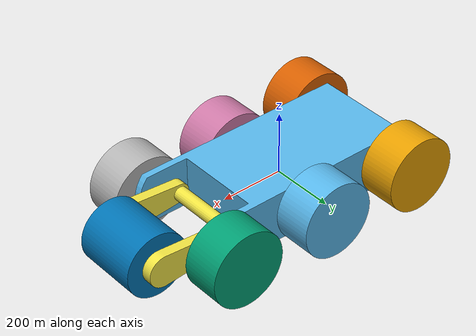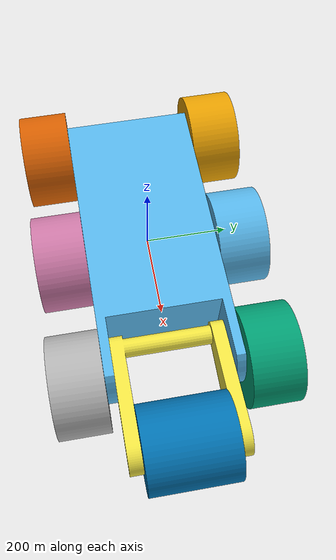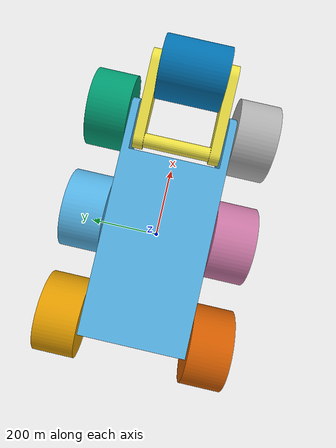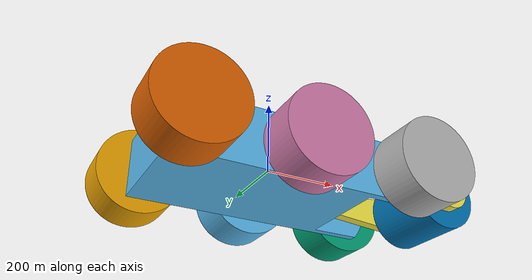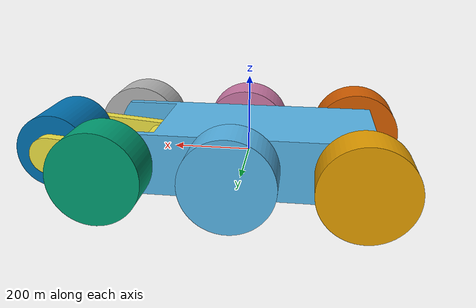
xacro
<?xml version="1.0"?>
<robot xmlns:xacro="http://ros.org/wiki/xacro" name="fire_robot">

<!--#################### XACRO 상수 ####################-->
  <xacro:arg name="include_inertial" default="true"/>
  <xacro:arg name="mesh_scale" default="1 1 1"/>
  <xacro:property name="mesh_dir"   value="$(find fire_description)/meshes"/>
  <xacro:property name="scale_3d"   value="$(arg mesh_scale)"/>
<!--#################### Robot Links & Joints ####################-->

<!-- Base footprint link -->
  <!-- xacro 루트 링크에 inertial 있으면 경고 띄움. dummy용-->
  <link name="base_footprint"/>
  <joint name="base_footprint_joint" type="fixed">
    <parent link="base_footprint"/>
    <child link="base_link"/>
    <origin xyz="0 0 0" rpy="0 0 0"/>
  </joint>

  <!-- ========== base_link (루트) ========== -->
  <link name="base_link">
    <inertial>
      <origin xyz="0 0 0" rpy="0 0 0"/>
      <mass value="6.0"/>
      <inertia ixx="0.02" ixy="0" ixz="0" iyy="0.02" iyz="0" izz="0.02"/>
    </inertial>
    <visual>
      <origin xyz="0 0 0" rpy="0 0 0"/>
      <geometry>
        <mesh filename="file://${mesh_dir}/base_link_Body1.obj" scale="${scale_3d}"/>
      </geometry>
    </visual>
    <collision>
      <origin xyz="0 0 0" rpy="0 0 0"/>
      <geometry>
        <mesh filename="file://${mesh_dir}/base_link_Body1.stl" scale="${scale_3d}"/>
      </geometry>
    </collision>
  </link>

  <!-- ===== IMU frame ===== -->
  <link name="imu_link"/>
  <joint name="imu_joint" type="fixed">
    <parent link="base_link"/>
    <child link="imu_link"/>
    <!-- 로봇 기준에서 IMU 위치/자세 조정 -->
    <origin xyz="0.0 0.0 -0.10" rpy="0 0 0"/>
  </joint>

  <!-- ===== Gazebo Sim sensors on imu_link ===== -->
  <gazebo reference="imu_link">
    <!-- 6축 IMU(가속도+자이로) -->
    <sensor name="imu_sensor" type="imu">
      <topic>/imu</topic>           <!-- GZ Transport topic -->
      <update_rate>100</update_rate>
      <imu>
        <angular_velocity>
          <x><noise type="gaussian"><mean>0</mean><stddev>0.002</stddev></noise></x>
          <y><noise type="gaussian"><mean>0</mean><stddev>0.002</stddev></noise></y>
          <z><noise type="gaussian"><mean>0</mean><stddev>0.002</stddev></noise></z>
        </angular_velocity>
        <linear_acceleration>
          <x><noise type="gaussian"><mean>0</mean><stddev>0.1</stddev></noise></x>
          <y><noise type="gaussian"><mean>0</mean><stddev>0.1</stddev></noise></y>
          <z><noise type="gaussian"><mean>0</mean><stddev>0.1</stddev></noise></z>
        </linear_acceleration>
      </imu>
    </sensor>

    <!-- 자력계(3축) -->
    <sensor name="mag_sensor" type="magnetometer">
      <topic>/mag</topic>           <!-- GZ Transport topic -->
      <update_rate>50</update_rate>
      <magnetometer>
        <x><noise type="gaussian"><mean>0</mean><stddev>0.0005</stddev></noise></x>
        <y><noise type="gaussian"><mean>0</mean><stddev>0.0005</stddev></noise></y>
        <z><noise type="gaussian"><mean>0</mean><stddev>0.0005</stddev></noise></z>
      </magnetometer>
    </sensor>
  </gazebo>

  <!-- ========== ARM ========== -->
  <joint name="arm_joint" type="revolute">
    <origin xyz="0.2765 0 0" rpy="0 0 0"/>
    <parent link="base_link"/>
    <child link="arm"/>
    <axis xyz="0 1 0"/>
    <limit velocity="1.0" lower="-0.5" upper="0.5" effort="50" />
    <!-- dynamic damping -->
    <dynamics damping="0.05" friction="0.2"/>
  </joint>

  <link name="arm">
    <inertial>
      <origin xyz="0 0 0" rpy="0 0 0"/>
      <mass value="0.4"/>
      <inertia ixx="0.001" ixy="0" ixz="0" iyy="0.001" iyz="0" izz="0.001"/>
    </inertial>
    <visual>
      <origin xyz="-0.2765 0 0" rpy="0 0 0"/>
      <geometry>
        <mesh filename="file://${mesh_dir}/arm_Body1.obj" scale="${scale_3d}"/>
      </geometry>
    </visual>
    <collision>
      <origin xyz="-0.2765 0 0" rpy="0 0 0"/>
      <geometry>
        <mesh filename="file://${mesh_dir}/arm_Body1.stl" scale="${scale_3d}"/>
      </geometry>
    </collision>
  </link>

  <!-- ========== BLADE ========== -->
  <joint name="blade_joint" type="continuous">
    <origin xyz="0.240 0 0" rpy="0 0 0"/>
    <parent link="arm"/>
    <child link="blade"/>
    <axis xyz="0 1 0"/>
    <limit velocity="200.0" effort="5.0"/>
    <dynamics damping="0.01" friction="0.05"/>
  </joint>

  <link name="blade">
    <inertial>
      <origin xyz="0 0 0" rpy="0 0 0"/>
      <mass value="2.7"/>
      <inertia ixx="0.005" ixy="0" ixz="0" iyy="0.005" iyz="0" izz="0.005"/>
    </inertial>
    <visual>
      <origin xyz="-0.51650 0 0" rpy="0 0 0"/>
      <geometry>
        <mesh filename="file://${mesh_dir}/blade_Body1.obj" scale="${scale_3d}"/>
      </geometry>
    </visual>
    <collision>
      <origin xyz="-0.51650 0 0" rpy="0 0 0"/>
      <geometry>
        <mesh filename="file://${mesh_dir}/blade_Body1.stl" scale="${scale_3d}"/>
      </geometry>
    </collision>
  </link>

  <!-- ========== LEFT WHEELS (parent=base_link) ========== -->
  <joint name="left_wheel_1_joint" type="continuous">
    <origin xyz="-0.2935 -0.15743 0" rpy="0 0 0"/>
    <parent link="base_link"/><child link="left_wheel1"/>
    <axis xyz="0 1 0"/><dynamics damping="0.05" friction="0.0"/>
    <limit velocity="0.26" effort="50.0"/>
  </joint>
  <link name="left_wheel1">
    <inertial><origin xyz="0 0 0" rpy="0 0 0"/>
      <mass value="2.5"/><inertia ixx="0.002" ixy="0" ixz="0" iyy="0.002" iyz="0" izz="0.002"/></inertial>
    <visual>
      <origin xyz="0.2935 0.15743 0" rpy="0 0 0"/>
      <geometry><mesh filename="file://${mesh_dir}/left_wheel1_Body1.obj" scale="${scale_3d}"/></geometry>
    </visual>
    <collision>
      <origin xyz="0.2935 0.14 0" rpy="0 0 0"/>
      <geometry><mesh filename="file://${mesh_dir}/left_wheel1_Body1.stl" scale="${scale_3d}"/></geometry>
    </collision>
  </link>

  <joint name="left_wheel_2_joint" type="continuous">
    <origin xyz="0.025 -0.15743 0" rpy="0 0 0"/>
    <parent link="base_link"/><child link="left_wheel2"/>
    <axis xyz="0 1 0"/><dynamics damping="0.05" friction="0.0"/>
    <limit velocity="0.26" effort="50.0"/>
  </joint>
  <link name="left_wheel2">
    <inertial><origin xyz="0 0 0" rpy="0 0 0"/>
      <mass value="2.5"/><inertia ixx="0.002" ixy="0" ixz="0" iyy="0.002" iyz="0" izz="0.002"/></inertial>
    <visual>
      <origin xyz="-0.025 0.15743 0" rpy="0 0 0"/>
      <geometry><mesh filename="file://${mesh_dir}/left_wheel2_Body1.obj" scale="${scale_3d}"/></geometry>
    </visual>
    <collision>
      <origin xyz="0.2935 0.14 0" rpy="0 0 0"/>
      <geometry><mesh filename="file://${mesh_dir}/left_wheel2_Body1.stl" scale="${scale_3d}"/></geometry>
    </collision>
  </link>

  <joint name="left_wheel_3_joint" type="continuous">
    <origin xyz="0.3455 -0.15743 0" rpy="0 0 0"/>
    <parent link="base_link"/><child link="left_wheel3"/>
    <axis xyz="0 1 0"/><dynamics damping="0.05" friction="0.0"/>
    <limit velocity="0.26" effort="50.0"/>
  </joint>
  <link name="left_wheel3">
    <inertial><origin xyz="0 0 0" rpy="0 0 0"/>
      <mass value="2.5"/><inertia ixx="0.002" ixy="0" ixz="0" iyy="0.002" iyz="0" izz="0.002"/></inertial>
    <visual>
      <origin xyz="-0.3455 0.15743 0" rpy="0 0 0"/>
      <geometry><mesh filename="file://${mesh_dir}/left_wheel3_Body1.obj" scale="${scale_3d}"/></geometry>
    </visual>
    <collision>
      <origin xyz="0.2935 0.14 0" rpy="0 0 0"/>
      <geometry><mesh filename="file://${mesh_dir}/left_wheel3_Body1.stl" scale="${scale_3d}"/></geometry>
    </collision>
  </link>

  <!-- ========== RIGHT WHEELS ========== -->
  <joint name="right_wheel_1_joint" type="continuous">
    <origin xyz="-0.2935 0.15743 0" rpy="0 0 0"/>
    <parent link="base_link"/><child link="right_wheel1"/>
    <axis xyz="0 1 0"/><dynamics damping="0.05" friction="0.0"/>
    <limit velocity="0.26" effort="50.0"/>
  </joint>
  <link name="right_wheel1">
    <inertial><origin xyz="0 0 0" rpy="0 0 0"/>
      <mass value="2.5"/><inertia ixx="0.002" ixy="0" ixz="0" iyy="0.002" iyz="0" izz="0.002"/></inertial>
    <visual>
      <origin xyz="0.2935 -0.15743 0" rpy="0 0 0"/>
      <geometry><mesh filename="file://${mesh_dir}/right_wheel1_Body1.obj" scale="${scale_3d}"/></geometry>
    </visual>
    <collision>
      <origin xyz="0.2935 0.28743 0" rpy="0 0 0"/>
      <geometry><mesh filename="file://${mesh_dir}/right_wheel1_Body1.stl" scale="${scale_3d}"/></geometry>
    </collision>
  </link>

  <joint name="right_wheel_2_joint" type="continuous">
    <origin xyz="0.025 0.15743 0" rpy="0 0 0"/>
    <parent link="base_link"/><child link="right_wheel2"/>
    <axis xyz="0 1 0"/><dynamics damping="0.05" friction="0.0"/>
    <limit velocity="0.26" effort="50.0"/>
  </joint>
  <link name="right_wheel2">
    <inertial><origin xyz="0 0 0" rpy="0 0 0"/>
      <mass value="2.5"/><inertia ixx="0.002" ixy="0" ixz="0" iyy="0.002" iyz="0" izz="0.002"/></inertial>
    <visual>
      <origin xyz="-0.025 -0.15743 0" rpy="0 0 0"/>
      <geometry><mesh filename="file://${mesh_dir}/right_wheel2_Body1.obj" scale="${scale_3d}"/></geometry>
    </visual>
    <collision>
      <origin xyz="0.2935 0.28743 0" rpy="0 0 0"/>
      <geometry><mesh filename="file://${mesh_dir}/right_wheel2_Body1.stl" scale="${scale_3d}"/></geometry>
    </collision>
  </link>

  <joint name="right_wheel_3_joint" type="continuous">
    <origin xyz="0.3455 0.15743 0" rpy="0 0 0"/>
    <parent link="base_link"/><child link="right_wheel3"/>
    <axis xyz="0 1 0"/><dynamics damping="0.05" friction="0.0"/>
    <limit velocity="0.26" effort="50.0"/>
  </joint>
  <link name="right_wheel3">
    <inertial><origin xyz="0 0 0" rpy="0 0 0"/>
      <mass value="2.5"/><inertia ixx="0.002" ixy="0" ixz="0" iyy="0.002" iyz="0" izz="0.002"/></inertial>
    <visual>
      <origin xyz="-0.3455 -0.15743 0" rpy="0 0 0"/>
      <geometry><mesh filename="file://${mesh_dir}/right_wheel3_Body1.obj" scale="${scale_3d}"/></geometry>
    </visual>
    <collision>
      <origin xyz="0.2935 0.28743 0" rpy="0 0 0"/>
      <geometry><mesh filename="file://${mesh_dir}/right_wheel3_Body1.stl" scale="${scale_3d}"/></geometry>
    </collision>
  </link>

  <!-- ===== ros2_control: Gazebo Sim 하드웨어 플러그인 ===== -->
  <ros2_control name="RobotController" type="system">
    <hardware>
      <plugin>gz_ros2_control/GazeboSimSystem</plugin>
    </hardware>

    <!-- Arm : position 명령-->
    <joint name="arm_joint">
      <command_interface name="position"/>
      <param name="min">-0.524</param>
      <state_interface name="position"/>
      <state_interface name="velocity"/>
      <state_interface name="effort"/>
    </joint>

    <!-- Blade : velocity 명령-->
    <joint name="blade_joint">
      <command_interface name="velocity"/>
      <state_interface name="position"/>
      <state_interface name="velocity"/>
      <state_interface name="effort"/>
    </joint>

    <!-- Wheels : velocity 명령-->
    <joint name="left_wheel_1_joint"><command_interface name="velocity"/>
      <state_interface name="position"/><state_interface name="velocity"/></joint>
    <joint name="left_wheel_2_joint"><command_interface name="velocity"/>
      <state_interface name="position"/><state_interface name="velocity"/></joint>
    <joint name="left_wheel_3_joint"><command_interface name="velocity"/>
      <state_interface name="position"/><state_interface name="velocity"/></joint>

    <joint name="right_wheel_1_joint"><command_interface name="velocity"/>
      <state_interface name="position"/><state_interface name="velocity"/></joint>
    <joint name="right_wheel_2_joint"><command_interface name="velocity"/>
      <state_interface name="position"/><state_interface name="velocity"/></joint>
    <joint name="right_wheel_3_joint"><command_interface name="velocity"/>
      <state_interface name="position"/><state_interface name="velocity"/></joint>
  </ros2_control>

  <!-- ===== Gazebo 플러그인: 컨트롤러 매니저 구동 ===== -->
  <gazebo>
    <plugin filename="libgz_ros2_control-system.so"
            name="gz_ros2_control::GazeboSimROS2ControlPlugin">
      <parameters>$(find fire_bringup)/config/controller.yaml</parameters>
    </plugin>
  </gazebo>
</robot>
